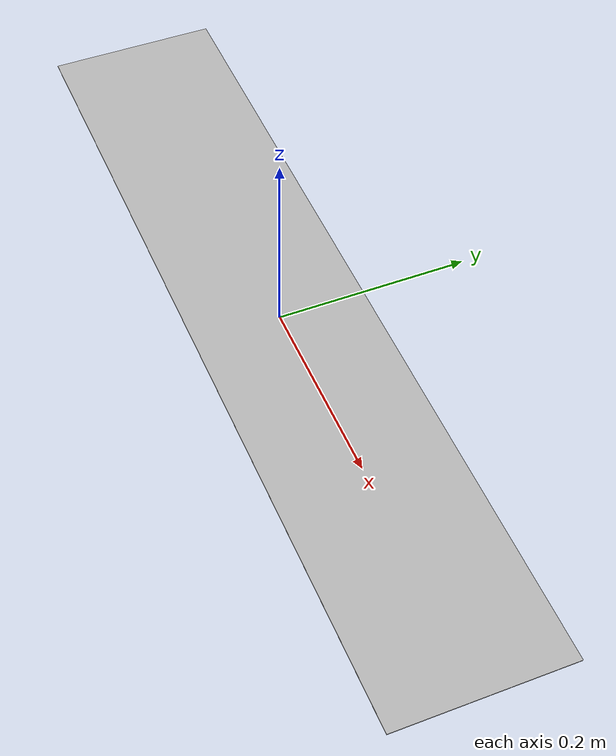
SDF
<?xml version='1.0'?>
<sdf version="1.5">
<model name="car_plate">
  <pose>0 0 0 0 0 0</pose>
  <static>true</static>
    <link name="link">
      <inertial>
        <mass>1.0</mass>
      </inertial>
      <collision name="collision">
        <geometry>
          <box>
            <size>1 1 1</size>
          </box>
        </geometry>
      </collision>
      <visual name="visual">
        <cast_shadows>false</cast_shadows>
	<geometry>
          <mesh>
            <uri>model://car_plate/meshes/car_plate.dae</uri>
            <scale>0.1 0.1 0.1</scale>
          </mesh>
        </geometry>
      </visual>
    </link>
  </model>
</sdf>
